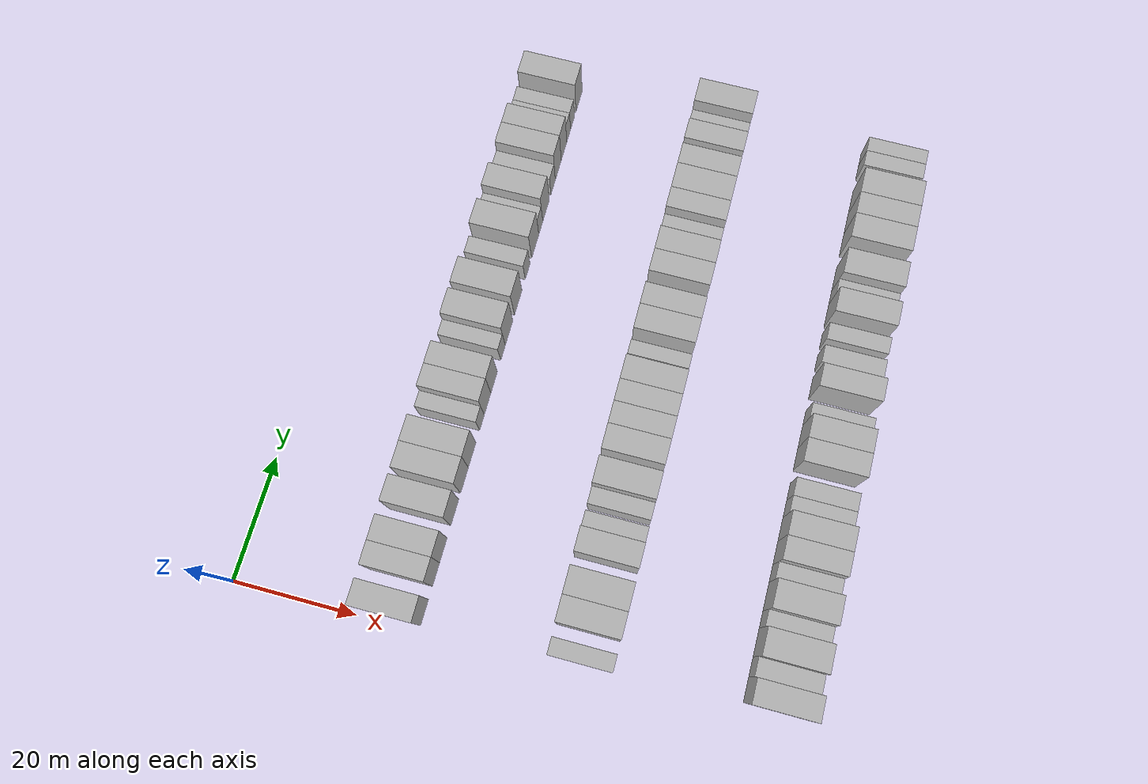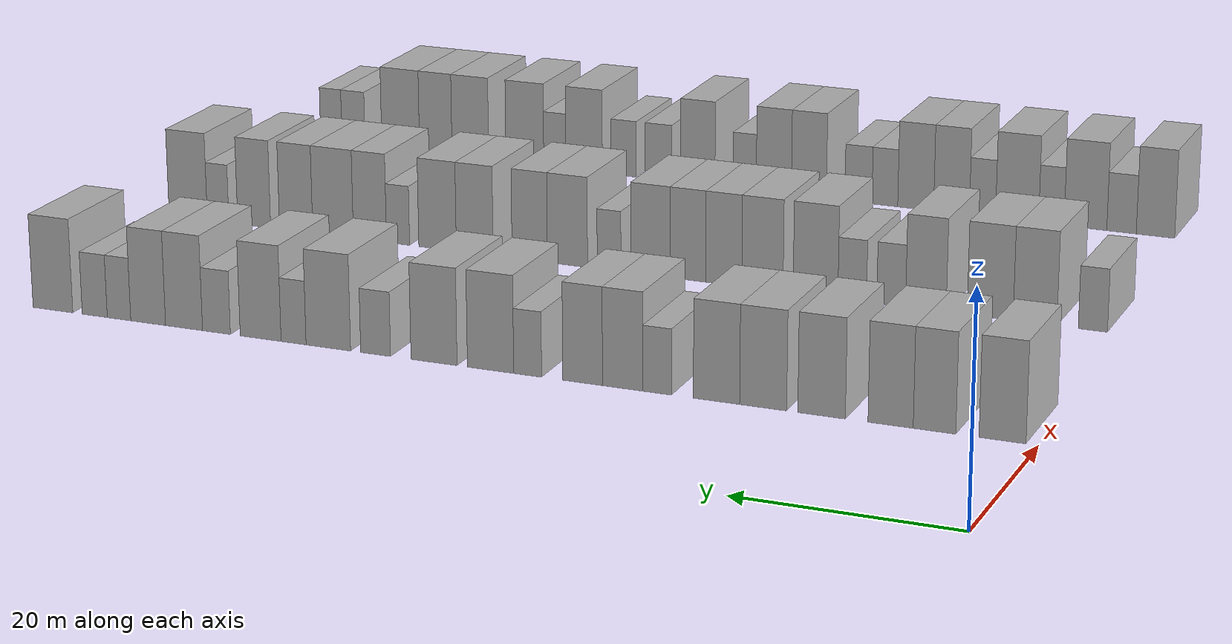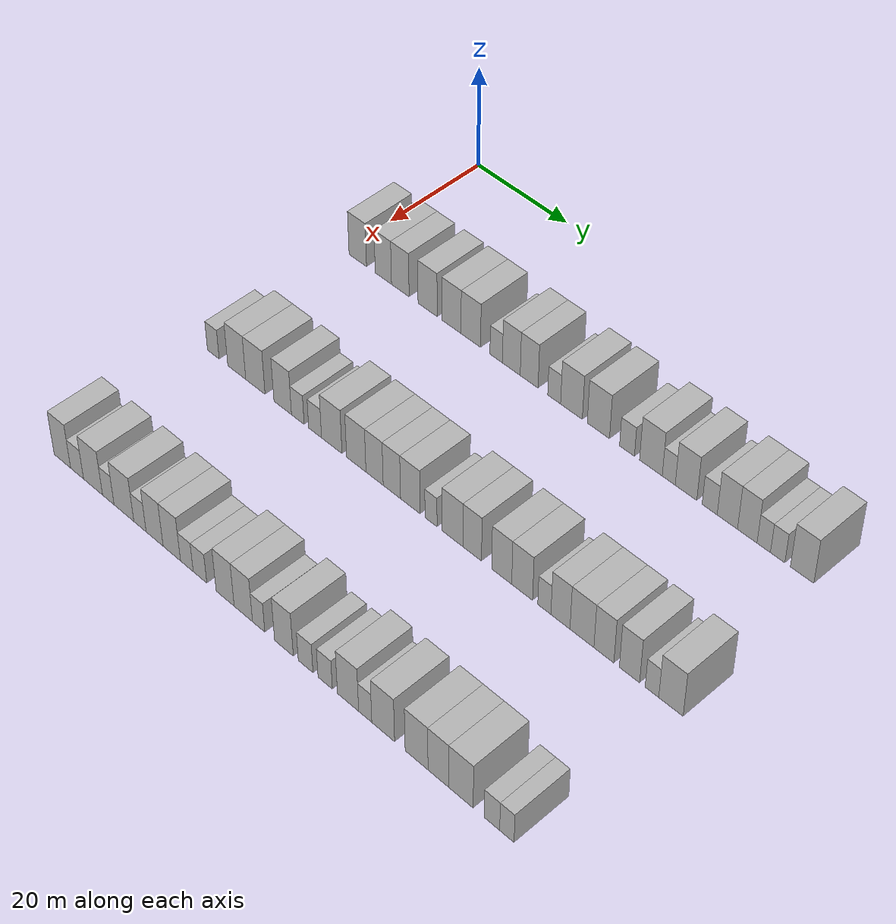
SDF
<sdf version="1.6">
 <world name="default">
  <model name="building_67">
   <static>1</static>
   <pose>25.0000 3.1019 0 0.000000 0.000000 0.000000</pose>
   <link name="link">
    <pose>0 0 4.50 0 0 0</pose>
    <collision name="collision"><geometry><box><size>10.0000 4.0298 9.0000</size></box></geometry></collision>
    <visual name="visual">
     <cast_shadows>0</cast_shadows>
     <geometry><box><size>10.0000 4.0298 9.0000</size></box></geometry>
     <material>
      <script>
       <uri>model://HANNAS_wall/materials/scripts</uri>
       <uri>model://HANNAS_wall/materials/textures</uri>
       <name>vrc/HANNAS_wall</name>
      </script>
     </material>
    </visual>
   </link>
  </model>
  <model name="building_68">
   <static>1</static>
   <pose>25.0000 8.9704 0 0.000000 0.000000 0.000000</pose>
   <link name="link">
    <pose>0 0 4.50 0 0 0</pose>
    <collision name="collision"><geometry><box><size>10.0000 3.7072 9.0000</size></box></geometry></collision>
    <visual name="visual">
     <cast_shadows>0</cast_shadows>
     <geometry><box><size>10.0000 3.7072 9.0000</size></box></geometry>
     <material>
      <script>
       <uri>model://HANNAS_wall/materials/scripts</uri>
       <uri>model://HANNAS_wall/materials/textures</uri>
       <name>vrc/HANNAS_wall</name>
      </script>
     </material>
    </visual>
   </link>
  </model>
  <model name="building_69">
   <static>1</static>
   <pose>25.0000 12.8083 0 0.000000 0.000000 0.000000</pose>
   <link name="link">
    <pose>0 0 4.50 0 0 0</pose>
    <collision name="collision"><geometry><box><size>10.0000 3.9685 9.0000</size></box></geometry></collision>
    <visual name="visual">
     <cast_shadows>0</cast_shadows>
     <geometry><box><size>10.0000 3.9685 9.0000</size></box></geometry>
     <material>
      <script>
       <uri>model://HANNAS_wall/materials/scripts</uri>
       <uri>model://HANNAS_wall/materials/textures</uri>
       <name>vrc/HANNAS_wall</name>
      </script>
     </material>
    </visual>
   </link>
  </model>
  <model name="building_70">
   <static>1</static>
   <pose>25.0000 18.9127 0 0.000000 0.000000 0.000000</pose>
   <link name="link">
    <pose>0 0 4.50 0 0 0</pose>
    <collision name="collision"><geometry><box><size>10.0000 4.2403 9.0000</size></box></geometry></collision>
    <visual name="visual">
     <cast_shadows>0</cast_shadows>
     <geometry><box><size>10.0000 4.2403 9.0000</size></box></geometry>
     <material>
      <script>
       <uri>model://HANNAS_wall/materials/scripts</uri>
       <uri>model://HANNAS_wall/materials/textures</uri>
       <name>vrc/HANNAS_wall</name>
      </script>
     </material>
    </visual>
   </link>
  </model>
  <model name="building_71">
   <static>1</static>
   <pose>25.0000 24.1550 0 0.000000 0.000000 0.000000</pose>
   <link name="link">
    <pose>0 0 4.50 0 0 0</pose>
    <collision name="collision"><geometry><box><size>10.0000 4.2442 9.0000</size></box></geometry></collision>
    <visual name="visual">
     <cast_shadows>0</cast_shadows>
     <geometry><box><size>10.0000 4.2442 9.0000</size></box></geometry>
     <material>
      <script>
       <uri>model://HANNAS_wall/materials/scripts</uri>
       <uri>model://HANNAS_wall/materials/textures</uri>
       <name>vrc/HANNAS_wall</name>
      </script>
     </material>
    </visual>
   </link>
  </model>
  <model name="building_72">
   <static>1</static>
   <pose>25.0000 28.3877 0 0.000000 0.000000 0.000000</pose>
   <link name="link">
    <pose>0 0 4.50 0 0 0</pose>
    <collision name="collision"><geometry><box><size>10.0000 4.2213 9.0000</size></box></geometry></collision>
    <visual name="visual">
     <cast_shadows>0</cast_shadows>
     <geometry><box><size>10.0000 4.2213 9.0000</size></box></geometry>
     <material>
      <script>
       <uri>model://HANNAS_wall/materials/scripts</uri>
       <uri>model://HANNAS_wall/materials/textures</uri>
       <name>vrc/HANNAS_wall</name>
      </script>
     </material>
    </visual>
   </link>
  </model>
  <model name="building_73">
   <static>1</static>
   <pose>25.0000 33.8289 0 0.000000 0.000000 0.000000</pose>
   <link name="link">
    <pose>0 0 3.00 0 0 0</pose>
    <collision name="collision"><geometry><box><size>10.0000 2.6611 6.0000</size></box></geometry></collision>
    <visual name="visual">
     <cast_shadows>0</cast_shadows>
     <geometry><box><size>10.0000 2.6611 6.0000</size></box></geometry>
     <material>
      <script>
       <uri>model://HANNAS_wall/materials/scripts</uri>
       <uri>model://HANNAS_wall/materials/textures</uri>
       <name>vrc/HANNAS_wall</name>
      </script>
     </material>
    </visual>
   </link>
  </model>
  <model name="building_74">
   <static>1</static>
   <pose>25.0000 37.0386 0 0.000000 0.000000 0.000000</pose>
   <link name="link">
    <pose>0 0 4.50 0 0 0</pose>
    <collision name="collision"><geometry><box><size>10.0000 3.7583 9.0000</size></box></geometry></collision>
    <visual name="visual">
     <cast_shadows>0</cast_shadows>
     <geometry><box><size>10.0000 3.7583 9.0000</size></box></geometry>
     <material>
      <script>
       <uri>model://HANNAS_wall/materials/scripts</uri>
       <uri>model://HANNAS_wall/materials/textures</uri>
       <name>vrc/HANNAS_wall</name>
      </script>
     </material>
    </visual>
   </link>
  </model>
  <model name="building_75">
   <static>1</static>
   <pose>25.0000 40.7835 0 0.000000 0.000000 0.000000</pose>
   <link name="link">
    <pose>0 0 4.50 0 0 0</pose>
    <collision name="collision"><geometry><box><size>10.0000 3.7316 9.0000</size></box></geometry></collision>
    <visual name="visual">
     <cast_shadows>0</cast_shadows>
     <geometry><box><size>10.0000 3.7316 9.0000</size></box></geometry>
     <material>
      <script>
       <uri>model://HANNAS_wall/materials/scripts</uri>
       <uri>model://HANNAS_wall/materials/textures</uri>
       <name>vrc/HANNAS_wall</name>
      </script>
     </material>
    </visual>
   </link>
  </model>
  <model name="building_76">
   <static>1</static>
   <pose>25.0000 45.9774 0 0.000000 0.000000 0.000000</pose>
   <link name="link">
    <pose>0 0 3.00 0 0 0</pose>
    <collision name="collision"><geometry><box><size>10.0000 2.6561 6.0000</size></box></geometry></collision>
    <visual name="visual">
     <cast_shadows>0</cast_shadows>
     <geometry><box><size>10.0000 2.6561 6.0000</size></box></geometry>
     <material>
      <script>
       <uri>model://HANNAS_wall/materials/scripts</uri>
       <uri>model://HANNAS_wall/materials/textures</uri>
       <name>vrc/HANNAS_wall</name>
      </script>
     </material>
    </visual>
   </link>
  </model>
  <model name="building_77">
   <static>1</static>
   <pose>25.0000 49.5243 0 0.000000 0.000000 0.000000</pose>
   <link name="link">
    <pose>0 0 4.50 0 0 0</pose>
    <collision name="collision"><geometry><box><size>10.0000 4.4378 9.0000</size></box></geometry></collision>
    <visual name="visual">
     <cast_shadows>0</cast_shadows>
     <geometry><box><size>10.0000 4.4378 9.0000</size></box></geometry>
     <material>
      <script>
       <uri>model://HANNAS_wall/materials/scripts</uri>
       <uri>model://HANNAS_wall/materials/textures</uri>
       <name>vrc/HANNAS_wall</name>
      </script>
     </material>
    </visual>
   </link>
  </model>
  <model name="building_78">
   <static>1</static>
   <pose>25.0000 54.9836 0 0.000000 0.000000 0.000000</pose>
   <link name="link">
    <pose>0 0 4.50 0 0 0</pose>
    <collision name="collision"><geometry><box><size>10.0000 4.4806 9.0000</size></box></geometry></collision>
    <visual name="visual">
     <cast_shadows>0</cast_shadows>
     <geometry><box><size>10.0000 4.4806 9.0000</size></box></geometry>
     <material>
      <script>
       <uri>model://HANNAS_wall/materials/scripts</uri>
       <uri>model://HANNAS_wall/materials/textures</uri>
       <name>vrc/HANNAS_wall</name>
      </script>
     </material>
    </visual>
   </link>
  </model>
  <model name="building_79">
   <static>1</static>
   <pose>25.0000 60.6953 0 0.000000 0.000000 0.000000</pose>
   <link name="link">
    <pose>0 0 3.00 0 0 0</pose>
    <collision name="collision"><geometry><box><size>10.0000 2.9428 6.0000</size></box></geometry></collision>
    <visual name="visual">
     <cast_shadows>0</cast_shadows>
     <geometry><box><size>10.0000 2.9428 6.0000</size></box></geometry>
     <material>
      <script>
       <uri>model://HANNAS_wall/materials/scripts</uri>
       <uri>model://HANNAS_wall/materials/textures</uri>
       <name>vrc/HANNAS_wall</name>
      </script>
     </material>
    </visual>
   </link>
  </model>
  <model name="building_80">
   <static>1</static>
   <pose>25.0000 65.3836 0 0.000000 0.000000 0.000000</pose>
   <link name="link">
    <pose>0 0 4.50 0 0 0</pose>
    <collision name="collision"><geometry><box><size>10.0000 4.4337 9.0000</size></box></geometry></collision>
    <visual name="visual">
     <cast_shadows>0</cast_shadows>
     <geometry><box><size>10.0000 4.4337 9.0000</size></box></geometry>
     <material>
      <script>
       <uri>model://HANNAS_wall/materials/scripts</uri>
       <uri>model://HANNAS_wall/materials/textures</uri>
       <name>vrc/HANNAS_wall</name>
      </script>
     </material>
    </visual>
   </link>
  </model>
  <model name="building_81">
   <static>1</static>
   <pose>25.0000 68.8554 0 0.000000 0.000000 0.000000</pose>
   <link name="link">
    <pose>0 0 3.00 0 0 0</pose>
    <collision name="collision"><geometry><box><size>10.0000 2.5101 6.0000</size></box></geometry></collision>
    <visual name="visual">
     <cast_shadows>0</cast_shadows>
     <geometry><box><size>10.0000 2.5101 6.0000</size></box></geometry>
     <material>
      <script>
       <uri>model://HANNAS_wall/materials/scripts</uri>
       <uri>model://HANNAS_wall/materials/textures</uri>
       <name>vrc/HANNAS_wall</name>
      </script>
     </material>
    </visual>
   </link>
  </model>
  <model name="building_82">
   <static>1</static>
   <pose>25.0000 72.1782 0 0.000000 0.000000 0.000000</pose>
   <link name="link">
    <pose>0 0 4.50 0 0 0</pose>
    <collision name="collision"><geometry><box><size>10.0000 4.1355 9.0000</size></box></geometry></collision>
    <visual name="visual">
     <cast_shadows>0</cast_shadows>
     <geometry><box><size>10.0000 4.1355 9.0000</size></box></geometry>
     <material>
      <script>
       <uri>model://HANNAS_wall/materials/scripts</uri>
       <uri>model://HANNAS_wall/materials/textures</uri>
       <name>vrc/HANNAS_wall</name>
      </script>
     </material>
    </visual>
   </link>
  </model>
  <model name="building_83">
   <static>1</static>
   <pose>25.0000 76.6693 0 0.000000 0.000000 0.000000</pose>
   <link name="link">
    <pose>0 0 3.00 0 0 0</pose>
    <collision name="collision"><geometry><box><size>10.0000 2.8465 6.0000</size></box></geometry></collision>
    <visual name="visual">
     <cast_shadows>0</cast_shadows>
     <geometry><box><size>10.0000 2.8465 6.0000</size></box></geometry>
     <material>
      <script>
       <uri>model://HANNAS_wall/materials/scripts</uri>
       <uri>model://HANNAS_wall/materials/textures</uri>
       <name>vrc/HANNAS_wall</name>
      </script>
     </material>
    </visual>
   </link>
  </model>
  <model name="building_84">
   <static>1</static>
   <pose>25.0000 79.9968 0 0.000000 0.000000 0.000000</pose>
   <link name="link">
    <pose>0 0 4.50 0 0 0</pose>
    <collision name="collision"><geometry><box><size>10.0000 3.8085 9.0000</size></box></geometry></collision>
    <visual name="visual">
     <cast_shadows>0</cast_shadows>
     <geometry><box><size>10.0000 3.8085 9.0000</size></box></geometry>
     <material>
      <script>
       <uri>model://HANNAS_wall/materials/scripts</uri>
       <uri>model://HANNAS_wall/materials/textures</uri>
       <name>vrc/HANNAS_wall</name>
      </script>
     </material>
    </visual>
   </link>
  </model>
  <model name="building_85">
   <static>1</static>
   <pose>25.0000 83.7093 0 0.000000 0.000000 0.000000</pose>
   <link name="link">
    <pose>0 0 4.50 0 0 0</pose>
    <collision name="collision"><geometry><box><size>10.0000 3.6164 9.0000</size></box></geometry></collision>
    <visual name="visual">
     <cast_shadows>0</cast_shadows>
     <geometry><box><size>10.0000 3.6164 9.0000</size></box></geometry>
     <material>
      <script>
       <uri>model://HANNAS_wall/materials/scripts</uri>
       <uri>model://HANNAS_wall/materials/textures</uri>
       <name>vrc/HANNAS_wall</name>
      </script>
     </material>
    </visual>
   </link>
  </model>
  <model name="building_86">
   <static>1</static>
   <pose>25.0000 86.7474 0 0.000000 0.000000 0.000000</pose>
   <link name="link">
    <pose>0 0 3.00 0 0 0</pose>
    <collision name="collision"><geometry><box><size>10.0000 2.4599 6.0000</size></box></geometry></collision>
    <visual name="visual">
     <cast_shadows>0</cast_shadows>
     <geometry><box><size>10.0000 2.4599 6.0000</size></box></geometry>
     <material>
      <script>
       <uri>model://HANNAS_wall/materials/scripts</uri>
       <uri>model://HANNAS_wall/materials/textures</uri>
       <name>vrc/HANNAS_wall</name>
      </script>
     </material>
    </visual>
   </link>
  </model>
  <model name="building_87">
   <static>1</static>
   <pose>25.0000 89.2916 0 0.000000 0.000000 0.000000</pose>
   <link name="link">
    <pose>0 0 3.00 0 0 0</pose>
    <collision name="collision"><geometry><box><size>10.0000 2.6285 6.0000</size></box></geometry></collision>
    <visual name="visual">
     <cast_shadows>0</cast_shadows>
     <geometry><box><size>10.0000 2.6285 6.0000</size></box></geometry>
     <material>
      <script>
       <uri>model://HANNAS_wall/materials/scripts</uri>
       <uri>model://HANNAS_wall/materials/textures</uri>
       <name>vrc/HANNAS_wall</name>
      </script>
     </material>
    </visual>
   </link>
  </model>
  <model name="building_88">
   <static>1</static>
   <pose>25.0000 93.7124 0 0.000000 0.000000 0.000000</pose>
   <link name="link">
    <pose>0 0 4.50 0 0 0</pose>
    <collision name="collision"><geometry><box><size>10.0000 4.2130 9.0000</size></box></geometry></collision>
    <visual name="visual">
     <cast_shadows>0</cast_shadows>
     <geometry><box><size>10.0000 4.2130 9.0000</size></box></geometry>
     <material>
      <script>
       <uri>model://HANNAS_wall/materials/scripts</uri>
       <uri>model://HANNAS_wall/materials/textures</uri>
       <name>vrc/HANNAS_wall</name>
      </script>
     </material>
    </visual>
   </link>
  </model>
  <model name="building_195">
   <static>1</static>
   <pose>55.0000 3.2305 0 0.000000 0.000000 0.000000</pose>
   <link name="link">
    <pose>0 0 3.00 0 0 0</pose>
    <collision name="collision"><geometry><box><size>10.0000 2.7105 6.0000</size></box></geometry></collision>
    <visual name="visual">
     <cast_shadows>0</cast_shadows>
     <geometry><box><size>10.0000 2.7105 6.0000</size></box></geometry>
     <material>
      <script>
       <uri>model://HANNAS_wall/materials/scripts</uri>
       <uri>model://HANNAS_wall/materials/textures</uri>
       <name>vrc/HANNAS_wall</name>
      </script>
     </material>
    </visual>
   </link>
  </model>
  <model name="building_196">
   <static>1</static>
   <pose>55.0000 8.6430 0 0.000000 0.000000 0.000000</pose>
   <link name="link">
    <pose>0 0 4.50 0 0 0</pose>
    <collision name="collision"><geometry><box><size>10.0000 4.1145 9.0000</size></box></geometry></collision>
    <visual name="visual">
     <cast_shadows>0</cast_shadows>
     <geometry><box><size>10.0000 4.1145 9.0000</size></box></geometry>
     <material>
      <script>
       <uri>model://HANNAS_wall/materials/scripts</uri>
       <uri>model://HANNAS_wall/materials/textures</uri>
       <name>vrc/HANNAS_wall</name>
      </script>
     </material>
    </visual>
   </link>
  </model>
  <model name="building_197">
   <static>1</static>
   <pose>55.0000 12.8856 0 0.000000 0.000000 0.000000</pose>
   <link name="link">
    <pose>0 0 4.50 0 0 0</pose>
    <collision name="collision"><geometry><box><size>10.0000 4.3707 9.0000</size></box></geometry></collision>
    <visual name="visual">
     <cast_shadows>0</cast_shadows>
     <geometry><box><size>10.0000 4.3707 9.0000</size></box></geometry>
     <material>
      <script>
       <uri>model://HANNAS_wall/materials/scripts</uri>
       <uri>model://HANNAS_wall/materials/textures</uri>
       <name>vrc/HANNAS_wall</name>
      </script>
     </material>
    </visual>
   </link>
  </model>
  <model name="building_198">
   <static>1</static>
   <pose>55.0000 19.0263 0 0.000000 0.000000 0.000000</pose>
   <link name="link">
    <pose>0 0 4.50 0 0 0</pose>
    <collision name="collision"><geometry><box><size>10.0000 3.9106 9.0000</size></box></geometry></collision>
    <visual name="visual">
     <cast_shadows>0</cast_shadows>
     <geometry><box><size>10.0000 3.9106 9.0000</size></box></geometry>
     <material>
      <script>
       <uri>model://HANNAS_wall/materials/scripts</uri>
       <uri>model://HANNAS_wall/materials/textures</uri>
       <name>vrc/HANNAS_wall</name>
      </script>
     </material>
    </visual>
   </link>
  </model>
  <model name="building_199">
   <static>1</static>
   <pose>55.0000 22.3775 0 0.000000 0.000000 0.000000</pose>
   <link name="link">
    <pose>0 0 3.00 0 0 0</pose>
    <collision name="collision"><geometry><box><size>10.0000 2.7917 6.0000</size></box></geometry></collision>
    <visual name="visual">
     <cast_shadows>0</cast_shadows>
     <geometry><box><size>10.0000 2.7917 6.0000</size></box></geometry>
     <material>
      <script>
       <uri>model://HANNAS_wall/materials/scripts</uri>
       <uri>model://HANNAS_wall/materials/textures</uri>
       <name>vrc/HANNAS_wall</name>
      </script>
     </material>
    </visual>
   </link>
  </model>
  <model name="building_200">
   <static>1</static>
   <pose>55.0000 26.1729 0 0.000000 0.000000 0.000000</pose>
   <link name="link">
    <pose>0 0 3.00 0 0 0</pose>
    <collision name="collision"><geometry><box><size>10.0000 2.7993 6.0000</size></box></geometry></collision>
    <visual name="visual">
     <cast_shadows>0</cast_shadows>
     <geometry><box><size>10.0000 2.7993 6.0000</size></box></geometry>
     <material>
      <script>
       <uri>model://HANNAS_wall/materials/scripts</uri>
       <uri>model://HANNAS_wall/materials/textures</uri>
       <name>vrc/HANNAS_wall</name>
      </script>
     </material>
    </visual>
   </link>
  </model>
  <model name="building_201">
   <static>1</static>
   <pose>55.0000 29.7800 0 0.000000 0.000000 0.000000</pose>
   <link name="link">
    <pose>0 0 4.50 0 0 0</pose>
    <collision name="collision"><geometry><box><size>10.0000 4.4147 9.0000</size></box></geometry></collision>
    <visual name="visual">
     <cast_shadows>0</cast_shadows>
     <geometry><box><size>10.0000 4.4147 9.0000</size></box></geometry>
     <material>
      <script>
       <uri>model://HANNAS_wall/materials/scripts</uri>
       <uri>model://HANNAS_wall/materials/textures</uri>
       <name>vrc/HANNAS_wall</name>
      </script>
     </material>
    </visual>
   </link>
  </model>
  <model name="building_202">
   <static>1</static>
   <pose>55.0000 35.0465 0 0.000000 0.000000 0.000000</pose>
   <link name="link">
    <pose>0 0 4.50 0 0 0</pose>
    <collision name="collision"><geometry><box><size>10.0000 4.1183 9.0000</size></box></geometry></collision>
    <visual name="visual">
     <cast_shadows>0</cast_shadows>
     <geometry><box><size>10.0000 4.1183 9.0000</size></box></geometry>
     <material>
      <script>
       <uri>model://HANNAS_wall/materials/scripts</uri>
       <uri>model://HANNAS_wall/materials/textures</uri>
       <name>vrc/HANNAS_wall</name>
      </script>
     </material>
    </visual>
   </link>
  </model>
  <model name="building_203">
   <static>1</static>
   <pose>55.0000 38.9213 0 0.000000 0.000000 0.000000</pose>
   <link name="link">
    <pose>0 0 4.50 0 0 0</pose>
    <collision name="collision"><geometry><box><size>10.0000 3.6314 9.0000</size></box></geometry></collision>
    <visual name="visual">
     <cast_shadows>0</cast_shadows>
     <geometry><box><size>10.0000 3.6314 9.0000</size></box></geometry>
     <material>
      <script>
       <uri>model://HANNAS_wall/materials/scripts</uri>
       <uri>model://HANNAS_wall/materials/textures</uri>
       <name>vrc/HANNAS_wall</name>
      </script>
     </material>
    </visual>
   </link>
  </model>
  <model name="building_204">
   <static>1</static>
   <pose>55.0000 42.5450 0 0.000000 0.000000 0.000000</pose>
   <link name="link">
    <pose>0 0 4.50 0 0 0</pose>
    <collision name="collision"><geometry><box><size>10.0000 3.6160 9.0000</size></box></geometry></collision>
    <visual name="visual">
     <cast_shadows>0</cast_shadows>
     <geometry><box><size>10.0000 3.6160 9.0000</size></box></geometry>
     <material>
      <script>
       <uri>model://HANNAS_wall/materials/scripts</uri>
       <uri>model://HANNAS_wall/materials/textures</uri>
       <name>vrc/HANNAS_wall</name>
      </script>
     </material>
    </visual>
   </link>
  </model>
  <model name="building_205">
   <static>1</static>
   <pose>55.0000 46.3685 0 0.000000 0.000000 0.000000</pose>
   <link name="link">
    <pose>0 0 4.50 0 0 0</pose>
    <collision name="collision"><geometry><box><size>10.0000 4.0309 9.0000</size></box></geometry></collision>
    <visual name="visual">
     <cast_shadows>0</cast_shadows>
     <geometry><box><size>10.0000 4.0309 9.0000</size></box></geometry>
     <material>
      <script>
       <uri>model://HANNAS_wall/materials/scripts</uri>
       <uri>model://HANNAS_wall/materials/textures</uri>
       <name>vrc/HANNAS_wall</name>
      </script>
     </material>
    </visual>
   </link>
  </model>
  <model name="building_206">
   <static>1</static>
   <pose>55.0000 50.6073 0 0.000000 0.000000 0.000000</pose>
   <link name="link">
    <pose>0 0 3.00 0 0 0</pose>
    <collision name="collision"><geometry><box><size>10.0000 2.4466 6.0000</size></box></geometry></collision>
    <visual name="visual">
     <cast_shadows>0</cast_shadows>
     <geometry><box><size>10.0000 2.4466 6.0000</size></box></geometry>
     <material>
      <script>
       <uri>model://HANNAS_wall/materials/scripts</uri>
       <uri>model://HANNAS_wall/materials/textures</uri>
       <name>vrc/HANNAS_wall</name>
      </script>
     </material>
    </visual>
   </link>
  </model>
  <model name="building_207">
   <static>1</static>
   <pose>55.0000 54.9237 0 0.000000 0.000000 0.000000</pose>
   <link name="link">
    <pose>0 0 4.50 0 0 0</pose>
    <collision name="collision"><geometry><box><size>10.0000 4.1863 9.0000</size></box></geometry></collision>
    <visual name="visual">
     <cast_shadows>0</cast_shadows>
     <geometry><box><size>10.0000 4.1863 9.0000</size></box></geometry>
     <material>
      <script>
       <uri>model://HANNAS_wall/materials/scripts</uri>
       <uri>model://HANNAS_wall/materials/textures</uri>
       <name>vrc/HANNAS_wall</name>
      </script>
     </material>
    </visual>
   </link>
  </model>
  <model name="building_208">
   <static>1</static>
   <pose>55.0000 58.8724 0 0.000000 0.000000 0.000000</pose>
   <link name="link">
    <pose>0 0 4.50 0 0 0</pose>
    <collision name="collision"><geometry><box><size>10.0000 3.7110 9.0000</size></box></geometry></collision>
    <visual name="visual">
     <cast_shadows>0</cast_shadows>
     <geometry><box><size>10.0000 3.7110 9.0000</size></box></geometry>
     <material>
      <script>
       <uri>model://HANNAS_wall/materials/scripts</uri>
       <uri>model://HANNAS_wall/materials/textures</uri>
       <name>vrc/HANNAS_wall</name>
      </script>
     </material>
    </visual>
   </link>
  </model>
  <model name="building_209">
   <static>1</static>
   <pose>55.0000 64.6853 0 0.000000 0.000000 0.000000</pose>
   <link name="link">
    <pose>0 0 4.50 0 0 0</pose>
    <collision name="collision"><geometry><box><size>10.0000 3.9149 9.0000</size></box></geometry></collision>
    <visual name="visual">
     <cast_shadows>0</cast_shadows>
     <geometry><box><size>10.0000 3.9149 9.0000</size></box></geometry>
     <material>
      <script>
       <uri>model://HANNAS_wall/materials/scripts</uri>
       <uri>model://HANNAS_wall/materials/textures</uri>
       <name>vrc/HANNAS_wall</name>
      </script>
     </material>
    </visual>
   </link>
  </model>
  <model name="building_210">
   <static>1</static>
   <pose>55.0000 68.6553 0 0.000000 0.000000 0.000000</pose>
   <link name="link">
    <pose>0 0 4.50 0 0 0</pose>
    <collision name="collision"><geometry><box><size>10.0000 4.0251 9.0000</size></box></geometry></collision>
    <visual name="visual">
     <cast_shadows>0</cast_shadows>
     <geometry><box><size>10.0000 4.0251 9.0000</size></box></geometry>
     <material>
      <script>
       <uri>model://HANNAS_wall/materials/scripts</uri>
       <uri>model://HANNAS_wall/materials/textures</uri>
       <name>vrc/HANNAS_wall</name>
      </script>
     </material>
    </visual>
   </link>
  </model>
  <model name="building_211">
   <static>1</static>
   <pose>55.0000 72.9164 0 0.000000 0.000000 0.000000</pose>
   <link name="link">
    <pose>0 0 3.00 0 0 0</pose>
    <collision name="collision"><geometry><box><size>10.0000 2.4971 6.0000</size></box></geometry></collision>
    <visual name="visual">
     <cast_shadows>0</cast_shadows>
     <geometry><box><size>10.0000 2.4971 6.0000</size></box></geometry>
     <material>
      <script>
       <uri>model://HANNAS_wall/materials/scripts</uri>
       <uri>model://HANNAS_wall/materials/textures</uri>
       <name>vrc/HANNAS_wall</name>
      </script>
     </material>
    </visual>
   </link>
  </model>
  <model name="building_212">
   <static>1</static>
   <pose>55.0000 75.9698 0 0.000000 0.000000 0.000000</pose>
   <link name="link">
    <pose>0 0 4.50 0 0 0</pose>
    <collision name="collision"><geometry><box><size>10.0000 3.6098 9.0000</size></box></geometry></collision>
    <visual name="visual">
     <cast_shadows>0</cast_shadows>
     <geometry><box><size>10.0000 3.6098 9.0000</size></box></geometry>
     <material>
      <script>
       <uri>model://HANNAS_wall/materials/scripts</uri>
       <uri>model://HANNAS_wall/materials/textures</uri>
       <name>vrc/HANNAS_wall</name>
      </script>
     </material>
    </visual>
   </link>
  </model>
  <model name="building_213">
   <static>1</static>
   <pose>55.0000 80.0085 0 0.000000 0.000000 0.000000</pose>
   <link name="link">
    <pose>0 0 4.50 0 0 0</pose>
    <collision name="collision"><geometry><box><size>10.0000 4.4675 9.0000</size></box></geometry></collision>
    <visual name="visual">
     <cast_shadows>0</cast_shadows>
     <geometry><box><size>10.0000 4.4675 9.0000</size></box></geometry>
     <material>
      <script>
       <uri>model://HANNAS_wall/materials/scripts</uri>
       <uri>model://HANNAS_wall/materials/textures</uri>
       <name>vrc/HANNAS_wall</name>
      </script>
     </material>
    </visual>
   </link>
  </model>
  <model name="building_214">
   <static>1</static>
   <pose>55.0000 84.0802 0 0.000000 0.000000 0.000000</pose>
   <link name="link">
    <pose>0 0 4.50 0 0 0</pose>
    <collision name="collision"><geometry><box><size>10.0000 3.6759 9.0000</size></box></geometry></collision>
    <visual name="visual">
     <cast_shadows>0</cast_shadows>
     <geometry><box><size>10.0000 3.6759 9.0000</size></box></geometry>
     <material>
      <script>
       <uri>model://HANNAS_wall/materials/scripts</uri>
       <uri>model://HANNAS_wall/materials/textures</uri>
       <name>vrc/HANNAS_wall</name>
      </script>
     </material>
    </visual>
   </link>
  </model>
  <model name="building_215">
   <static>1</static>
   <pose>55.0000 88.7581 0 0.000000 0.000000 0.000000</pose>
   <link name="link">
    <pose>0 0 4.50 0 0 0</pose>
    <collision name="collision"><geometry><box><size>10.0000 3.6798 9.0000</size></box></geometry></collision>
    <visual name="visual">
     <cast_shadows>0</cast_shadows>
     <geometry><box><size>10.0000 3.6798 9.0000</size></box></geometry>
     <material>
      <script>
       <uri>model://HANNAS_wall/materials/scripts</uri>
       <uri>model://HANNAS_wall/materials/textures</uri>
       <name>vrc/HANNAS_wall</name>
      </script>
     </material>
    </visual>
   </link>
  </model>
  <model name="building_216">
   <static>1</static>
   <pose>55.0000 92.8142 0 0.000000 0.000000 0.000000</pose>
   <link name="link">
    <pose>0 0 3.00 0 0 0</pose>
    <collision name="collision"><geometry><box><size>10.0000 2.4324 6.0000</size></box></geometry></collision>
    <visual name="visual">
     <cast_shadows>0</cast_shadows>
     <geometry><box><size>10.0000 2.4324 6.0000</size></box></geometry>
     <material>
      <script>
       <uri>model://HANNAS_wall/materials/scripts</uri>
       <uri>model://HANNAS_wall/materials/textures</uri>
       <name>vrc/HANNAS_wall</name>
      </script>
     </material>
    </visual>
   </link>
  </model>
  <model name="building_217">
   <static>1</static>
   <pose>55.0000 96.1993 0 0.000000 0.000000 0.000000</pose>
   <link name="link">
    <pose>0 0 4.50 0 0 0</pose>
    <collision name="collision"><geometry><box><size>10.0000 4.3377 9.0000</size></box></geometry></collision>
    <visual name="visual">
     <cast_shadows>0</cast_shadows>
     <geometry><box><size>10.0000 4.3377 9.0000</size></box></geometry>
     <material>
      <script>
       <uri>model://HANNAS_wall/materials/scripts</uri>
       <uri>model://HANNAS_wall/materials/textures</uri>
       <name>vrc/HANNAS_wall</name>
      </script>
     </material>
    </visual>
   </link>
  </model>
  <model name="building_342">
   <static>1</static>
   <pose>85.0000 4.7111 0 0.000000 0.000000 0.000000</pose>
   <link name="link">
    <pose>0 0 4.50 0 0 0</pose>
    <collision name="collision"><geometry><box><size>10.0000 3.8581 9.0000</size></box></geometry></collision>
    <visual name="visual">
     <cast_shadows>0</cast_shadows>
     <geometry><box><size>10.0000 3.8581 9.0000</size></box></geometry>
     <material>
      <script>
       <uri>model://HANNAS_wall/materials/scripts</uri>
       <uri>model://HANNAS_wall/materials/textures</uri>
       <name>vrc/HANNAS_wall</name>
      </script>
     </material>
    </visual>
   </link>
  </model>
  <model name="building_343">
   <static>1</static>
   <pose>85.0000 8.1290 0 0.000000 0.000000 0.000000</pose>
   <link name="link">
    <pose>0 0 3.00 0 0 0</pose>
    <collision name="collision"><geometry><box><size>10.0000 2.9777 6.0000</size></box></geometry></collision>
    <visual name="visual">
     <cast_shadows>0</cast_shadows>
     <geometry><box><size>10.0000 2.9777 6.0000</size></box></geometry>
     <material>
      <script>
       <uri>model://HANNAS_wall/materials/scripts</uri>
       <uri>model://HANNAS_wall/materials/textures</uri>
       <name>vrc/HANNAS_wall</name>
      </script>
     </material>
    </visual>
   </link>
  </model>
  <model name="building_344">
   <static>1</static>
   <pose>85.0000 11.7934 0 0.000000 0.000000 0.000000</pose>
   <link name="link">
    <pose>0 0 4.50 0 0 0</pose>
    <collision name="collision"><geometry><box><size>10.0000 4.3512 9.0000</size></box></geometry></collision>
    <visual name="visual">
     <cast_shadows>0</cast_shadows>
     <geometry><box><size>10.0000 4.3512 9.0000</size></box></geometry>
     <material>
      <script>
       <uri>model://HANNAS_wall/materials/scripts</uri>
       <uri>model://HANNAS_wall/materials/textures</uri>
       <name>vrc/HANNAS_wall</name>
      </script>
     </material>
    </visual>
   </link>
  </model>
  <model name="building_345">
   <static>1</static>
   <pose>85.0000 15.2769 0 0.000000 0.000000 0.000000</pose>
   <link name="link">
    <pose>0 0 3.00 0 0 0</pose>
    <collision name="collision"><geometry><box><size>10.0000 2.6158 6.0000</size></box></geometry></collision>
    <visual name="visual">
     <cast_shadows>0</cast_shadows>
     <geometry><box><size>10.0000 2.6158 6.0000</size></box></geometry>
     <material>
      <script>
       <uri>model://HANNAS_wall/materials/scripts</uri>
       <uri>model://HANNAS_wall/materials/textures</uri>
       <name>vrc/HANNAS_wall</name>
      </script>
     </material>
    </visual>
   </link>
  </model>
  <model name="building_346">
   <static>1</static>
   <pose>85.0000 18.8098 0 0.000000 0.000000 0.000000</pose>
   <link name="link">
    <pose>0 0 4.50 0 0 0</pose>
    <collision name="collision"><geometry><box><size>10.0000 4.4499 9.0000</size></box></geometry></collision>
    <visual name="visual">
     <cast_shadows>0</cast_shadows>
     <geometry><box><size>10.0000 4.4499 9.0000</size></box></geometry>
     <material>
      <script>
       <uri>model://HANNAS_wall/materials/scripts</uri>
       <uri>model://HANNAS_wall/materials/textures</uri>
       <name>vrc/HANNAS_wall</name>
      </script>
     </material>
    </visual>
   </link>
  </model>
  <model name="building_347">
   <static>1</static>
   <pose>85.0000 22.3975 0 0.000000 0.000000 0.000000</pose>
   <link name="link">
    <pose>0 0 3.00 0 0 0</pose>
    <collision name="collision"><geometry><box><size>10.0000 2.7255 6.0000</size></box></geometry></collision>
    <visual name="visual">
     <cast_shadows>0</cast_shadows>
     <geometry><box><size>10.0000 2.7255 6.0000</size></box></geometry>
     <material>
      <script>
       <uri>model://HANNAS_wall/materials/scripts</uri>
       <uri>model://HANNAS_wall/materials/textures</uri>
       <name>vrc/HANNAS_wall</name>
      </script>
     </material>
    </visual>
   </link>
  </model>
  <model name="building_348">
   <static>1</static>
   <pose>85.0000 25.6348 0 0.000000 0.000000 0.000000</pose>
   <link name="link">
    <pose>0 0 4.50 0 0 0</pose>
    <collision name="collision"><geometry><box><size>10.0000 3.7490 9.0000</size></box></geometry></collision>
    <visual name="visual">
     <cast_shadows>0</cast_shadows>
     <geometry><box><size>10.0000 3.7490 9.0000</size></box></geometry>
     <material>
      <script>
       <uri>model://HANNAS_wall/materials/scripts</uri>
       <uri>model://HANNAS_wall/materials/textures</uri>
       <name>vrc/HANNAS_wall</name>
      </script>
     </material>
    </visual>
   </link>
  </model>
  <model name="building_349">
   <static>1</static>
   <pose>85.0000 29.4052 0 0.000000 0.000000 0.000000</pose>
   <link name="link">
    <pose>0 0 4.50 0 0 0</pose>
    <collision name="collision"><geometry><box><size>10.0000 3.7917 9.0000</size></box></geometry></collision>
    <visual name="visual">
     <cast_shadows>0</cast_shadows>
     <geometry><box><size>10.0000 3.7917 9.0000</size></box></geometry>
     <material>
      <script>
       <uri>model://HANNAS_wall/materials/scripts</uri>
       <uri>model://HANNAS_wall/materials/textures</uri>
       <name>vrc/HANNAS_wall</name>
      </script>
     </material>
    </visual>
   </link>
  </model>
  <model name="building_350">
   <static>1</static>
   <pose>85.0000 32.6722 0 0.000000 0.000000 0.000000</pose>
   <link name="link">
    <pose>0 0 3.00 0 0 0</pose>
    <collision name="collision"><geometry><box><size>10.0000 2.7423 6.0000</size></box></geometry></collision>
    <visual name="visual">
     <cast_shadows>0</cast_shadows>
     <geometry><box><size>10.0000 2.7423 6.0000</size></box></geometry>
     <material>
      <script>
       <uri>model://HANNAS_wall/materials/scripts</uri>
       <uri>model://HANNAS_wall/materials/textures</uri>
       <name>vrc/HANNAS_wall</name>
      </script>
     </material>
    </visual>
   </link>
  </model>
  <model name="building_351">
   <static>1</static>
   <pose>85.0000 35.4899 0 0.000000 0.000000 0.000000</pose>
   <link name="link">
    <pose>0 0 3.00 0 0 0</pose>
    <collision name="collision"><geometry><box><size>10.0000 2.8932 6.0000</size></box></geometry></collision>
    <visual name="visual">
     <cast_shadows>0</cast_shadows>
     <geometry><box><size>10.0000 2.8932 6.0000</size></box></geometry>
     <material>
      <script>
       <uri>model://HANNAS_wall/materials/scripts</uri>
       <uri>model://HANNAS_wall/materials/textures</uri>
       <name>vrc/HANNAS_wall</name>
      </script>
     </material>
    </visual>
   </link>
  </model>
  <model name="building_352">
   <static>1</static>
   <pose>85.0000 40.8300 0 0.000000 0.000000 0.000000</pose>
   <link name="link">
    <pose>0 0 4.50 0 0 0</pose>
    <collision name="collision"><geometry><box><size>10.0000 3.7868 9.0000</size></box></geometry></collision>
    <visual name="visual">
     <cast_shadows>0</cast_shadows>
     <geometry><box><size>10.0000 3.7868 9.0000</size></box></geometry>
     <material>
      <script>
       <uri>model://HANNAS_wall/materials/scripts</uri>
       <uri>model://HANNAS_wall/materials/textures</uri>
       <name>vrc/HANNAS_wall</name>
      </script>
     </material>
    </visual>
   </link>
  </model>
  <model name="building_353">
   <static>1</static>
   <pose>85.0000 44.6350 0 0.000000 0.000000 0.000000</pose>
   <link name="link">
    <pose>0 0 4.50 0 0 0</pose>
    <collision name="collision"><geometry><box><size>10.0000 3.8233 9.0000</size></box></geometry></collision>
    <visual name="visual">
     <cast_shadows>0</cast_shadows>
     <geometry><box><size>10.0000 3.8233 9.0000</size></box></geometry>
     <material>
      <script>
       <uri>model://HANNAS_wall/materials/scripts</uri>
       <uri>model://HANNAS_wall/materials/textures</uri>
       <name>vrc/HANNAS_wall</name>
      </script>
     </material>
    </visual>
   </link>
  </model>
  <model name="building_354">
   <static>1</static>
   <pose>85.0000 47.8133 0 0.000000 0.000000 0.000000</pose>
   <link name="link">
    <pose>0 0 3.00 0 0 0</pose>
    <collision name="collision"><geometry><box><size>10.0000 2.5332 6.0000</size></box></geometry></collision>
    <visual name="visual">
     <cast_shadows>0</cast_shadows>
     <geometry><box><size>10.0000 2.5332 6.0000</size></box></geometry>
     <material>
      <script>
       <uri>model://HANNAS_wall/materials/scripts</uri>
       <uri>model://HANNAS_wall/materials/textures</uri>
       <name>vrc/HANNAS_wall</name>
      </script>
     </material>
    </visual>
   </link>
  </model>
  <model name="building_355">
   <static>1</static>
   <pose>85.0000 52.9795 0 0.000000 0.000000 0.000000</pose>
   <link name="link">
    <pose>0 0 4.50 0 0 0</pose>
    <collision name="collision"><geometry><box><size>10.0000 3.7993 9.0000</size></box></geometry></collision>
    <visual name="visual">
     <cast_shadows>0</cast_shadows>
     <geometry><box><size>10.0000 3.7993 9.0000</size></box></geometry>
     <material>
      <script>
       <uri>model://HANNAS_wall/materials/scripts</uri>
       <uri>model://HANNAS_wall/materials/textures</uri>
       <name>vrc/HANNAS_wall</name>
      </script>
     </material>
    </visual>
   </link>
  </model>
  <model name="building_356">
   <static>1</static>
   <pose>85.0000 57.3545 0 0.000000 0.000000 0.000000</pose>
   <link name="link">
    <pose>0 0 3.00 0 0 0</pose>
    <collision name="collision"><geometry><box><size>10.0000 2.9506 6.0000</size></box></geometry></collision>
    <visual name="visual">
     <cast_shadows>0</cast_shadows>
     <geometry><box><size>10.0000 2.9506 6.0000</size></box></geometry>
     <material>
      <script>
       <uri>model://HANNAS_wall/materials/scripts</uri>
       <uri>model://HANNAS_wall/materials/textures</uri>
       <name>vrc/HANNAS_wall</name>
      </script>
     </material>
    </visual>
   </link>
  </model>
  <model name="building_357">
   <static>1</static>
   <pose>85.0000 61.2486 0 0.000000 0.000000 0.000000</pose>
   <link name="link">
    <pose>0 0 3.00 0 0 0</pose>
    <collision name="collision"><geometry><box><size>10.0000 2.8377 6.0000</size></box></geometry></collision>
    <visual name="visual">
     <cast_shadows>0</cast_shadows>
     <geometry><box><size>10.0000 2.8377 6.0000</size></box></geometry>
     <material>
      <script>
       <uri>model://HANNAS_wall/materials/scripts</uri>
       <uri>model://HANNAS_wall/materials/textures</uri>
       <name>vrc/HANNAS_wall</name>
      </script>
     </material>
    </visual>
   </link>
  </model>
  <model name="building_358">
   <static>1</static>
   <pose>85.0000 65.7368 0 0.000000 0.000000 0.000000</pose>
   <link name="link">
    <pose>0 0 4.50 0 0 0</pose>
    <collision name="collision"><geometry><box><size>10.0000 4.1387 9.0000</size></box></geometry></collision>
    <visual name="visual">
     <cast_shadows>0</cast_shadows>
     <geometry><box><size>10.0000 4.1387 9.0000</size></box></geometry>
     <material>
      <script>
       <uri>model://HANNAS_wall/materials/scripts</uri>
       <uri>model://HANNAS_wall/materials/textures</uri>
       <name>vrc/HANNAS_wall</name>
      </script>
     </material>
    </visual>
   </link>
  </model>
  <model name="building_359">
   <static>1</static>
   <pose>85.0000 69.0738 0 0.000000 0.000000 0.000000</pose>
   <link name="link">
    <pose>0 0 3.00 0 0 0</pose>
    <collision name="collision"><geometry><box><size>10.0000 2.5354 6.0000</size></box></geometry></collision>
    <visual name="visual">
     <cast_shadows>0</cast_shadows>
     <geometry><box><size>10.0000 2.5354 6.0000</size></box></geometry>
     <material>
      <script>
       <uri>model://HANNAS_wall/materials/scripts</uri>
       <uri>model://HANNAS_wall/materials/textures</uri>
       <name>vrc/HANNAS_wall</name>
      </script>
     </material>
    </visual>
   </link>
  </model>
  <model name="building_360">
   <static>1</static>
   <pose>85.0000 72.5210 0 0.000000 0.000000 0.000000</pose>
   <link name="link">
    <pose>0 0 4.50 0 0 0</pose>
    <collision name="collision"><geometry><box><size>10.0000 4.3589 9.0000</size></box></geometry></collision>
    <visual name="visual">
     <cast_shadows>0</cast_shadows>
     <geometry><box><size>10.0000 4.3589 9.0000</size></box></geometry>
     <material>
      <script>
       <uri>model://HANNAS_wall/materials/scripts</uri>
       <uri>model://HANNAS_wall/materials/textures</uri>
       <name>vrc/HANNAS_wall</name>
      </script>
     </material>
    </visual>
   </link>
  </model>
  <model name="building_361">
   <static>1</static>
   <pose>85.0000 78.8381 0 0.000000 0.000000 0.000000</pose>
   <link name="link">
    <pose>0 0 4.50 0 0 0</pose>
    <collision name="collision"><geometry><box><size>10.0000 4.2753 9.0000</size></box></geometry></collision>
    <visual name="visual">
     <cast_shadows>0</cast_shadows>
     <geometry><box><size>10.0000 4.2753 9.0000</size></box></geometry>
     <material>
      <script>
       <uri>model://HANNAS_wall/materials/scripts</uri>
       <uri>model://HANNAS_wall/materials/textures</uri>
       <name>vrc/HANNAS_wall</name>
      </script>
     </material>
    </visual>
   </link>
  </model>
  <model name="building_362">
   <static>1</static>
   <pose>85.0000 82.8851 0 0.000000 0.000000 0.000000</pose>
   <link name="link">
    <pose>0 0 4.50 0 0 0</pose>
    <collision name="collision"><geometry><box><size>10.0000 3.8188 9.0000</size></box></geometry></collision>
    <visual name="visual">
     <cast_shadows>0</cast_shadows>
     <geometry><box><size>10.0000 3.8188 9.0000</size></box></geometry>
     <material>
      <script>
       <uri>model://HANNAS_wall/materials/scripts</uri>
       <uri>model://HANNAS_wall/materials/textures</uri>
       <name>vrc/HANNAS_wall</name>
      </script>
     </material>
    </visual>
   </link>
  </model>
  <model name="building_363">
   <static>1</static>
   <pose>85.0000 87.0305 0 0.000000 0.000000 0.000000</pose>
   <link name="link">
    <pose>0 0 4.50 0 0 0</pose>
    <collision name="collision"><geometry><box><size>10.0000 4.4719 9.0000</size></box></geometry></collision>
    <visual name="visual">
     <cast_shadows>0</cast_shadows>
     <geometry><box><size>10.0000 4.4719 9.0000</size></box></geometry>
     <material>
      <script>
       <uri>model://HANNAS_wall/materials/scripts</uri>
       <uri>model://HANNAS_wall/materials/textures</uri>
       <name>vrc/HANNAS_wall</name>
      </script>
     </material>
    </visual>
   </link>
  </model>
  <model name="building_364">
   <static>1</static>
   <pose>85.0000 92.6492 0 0.000000 0.000000 0.000000</pose>
   <link name="link">
    <pose>0 0 3.00 0 0 0</pose>
    <collision name="collision"><geometry><box><size>10.0000 2.7656 6.0000</size></box></geometry></collision>
    <visual name="visual">
     <cast_shadows>0</cast_shadows>
     <geometry><box><size>10.0000 2.7656 6.0000</size></box></geometry>
     <material>
      <script>
       <uri>model://HANNAS_wall/materials/scripts</uri>
       <uri>model://HANNAS_wall/materials/textures</uri>
       <name>vrc/HANNAS_wall</name>
      </script>
     </material>
    </visual>
   </link>
  </model>
  <model name="building_365">
   <static>1</static>
   <pose>85.0000 95.3100 0 0.000000 0.000000 0.000000</pose>
   <link name="link">
    <pose>0 0 3.00 0 0 0</pose>
    <collision name="collision"><geometry><box><size>10.0000 2.5560 6.0000</size></box></geometry></collision>
    <visual name="visual">
     <cast_shadows>0</cast_shadows>
     <geometry><box><size>10.0000 2.5560 6.0000</size></box></geometry>
     <material>
      <script>
       <uri>model://HANNAS_wall/materials/scripts</uri>
       <uri>model://HANNAS_wall/materials/textures</uri>
       <name>vrc/HANNAS_wall</name>
      </script>
     </material>
    </visual>
   </link>
  </model>
 </world>
</sdf>
